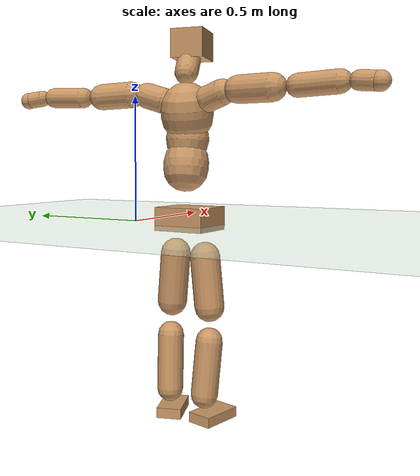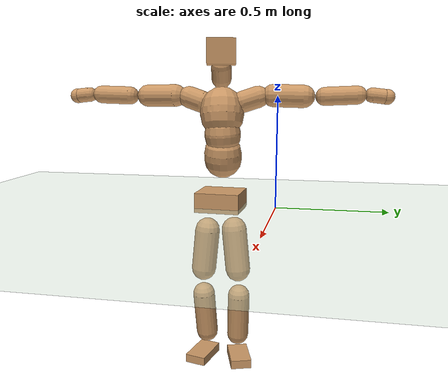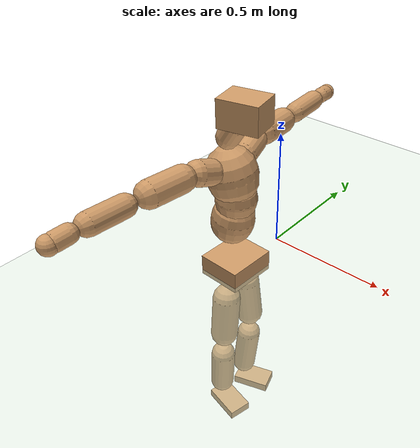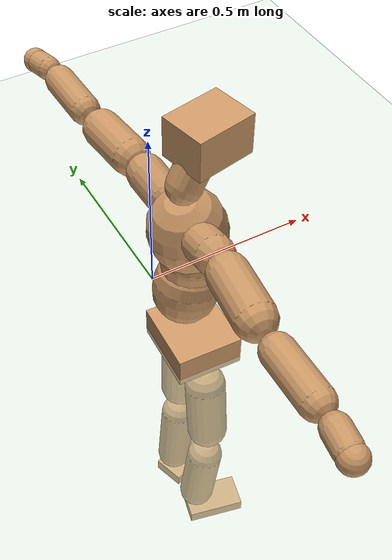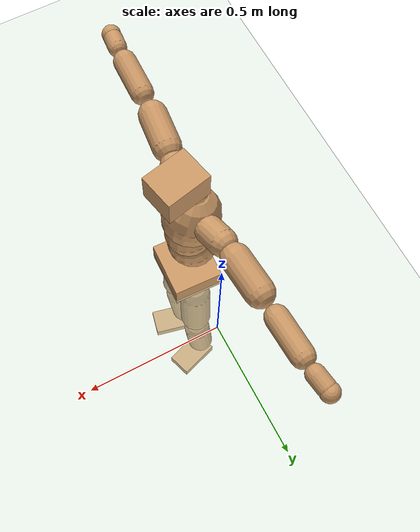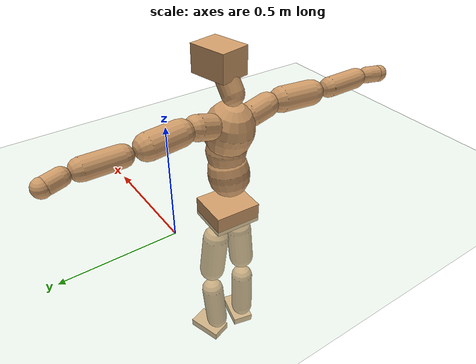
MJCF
<mujoco model="humanoid">
  <compiler coordinate="local" angle="radian"/>
  <default>
    <joint damping="0.0" armature="0.01" stiffness="0.0" limited="true"/>
    <geom conaffinity="1" condim="3" contype="7" margin="0.001" rgba="0.8 0.6 .4 1"/>
  </default>
  <asset>
    <texture type="skybox" builtin="gradient" rgb1=".4 .5 .6" rgb2="0 0 0" width="100" height="100"/>
    <texture builtin="flat" height="1278" mark="cross" markrgb="1 1 1" name="texgeom" random="0.01" rgb1="0.8 0.6 0.4" rgb2="0.8 0.6 0.4" type="cube" width="127"/>
    <texture builtin="checker" height="100" name="texplane" rgb1="0 0 0" rgb2="0.8 0.8 0.8" type="2d" width="100"/>
    <material name="MatPlane" reflectance="0.5" shininess="1" specular="1" texrepeat="60 60" texture="texplane"/>
    <material name="geom" texture="texgeom" texuniform="true"/>
  </asset>
  <worldbody>
    <light cutoff="100" diffuse="1 1 1" dir="-0 0 -1.3" directional="true" exponent="1" pos="0 0 1.3" specular=".1 .1 .1"/>
    <geom conaffinity="1" condim="3" name="floor" pos="0 0 0" rgba="0.8 0.9 0.8 1" size="100 100 .2" type="plane" material="MatPlane"/>
    <body name="Pelvis" pos="-0.0024 -0.258 0.0304">
      <freejoint name="Pelvis"/>
      <geom type="box" contype="1" conaffinity="1" density="500" pos="-0.0098 0.0004 -0.0074" size="0.0908 0.1024 0.045" quat="0.9998 0.0000 0.0000 -0.0216" name="Pelvis"/>
      <body name="L_Hip" pos="-0.0115 0.0569 -0.0805">
        <joint name="L_Hip_x" type="hinge" pos="0 0 0" axis="1 0 0" stiffness="800" damping="80" armature="0.02" range="-180.0000 180.0000"/>
        <joint name="L_Hip_y" type="hinge" pos="0 0 0" axis="0 1 0" stiffness="800" damping="80" armature="0.02" range="-180.0000 180.0000"/>
        <joint name="L_Hip_z" type="hinge" pos="0 0 0" axis="0 0 1" stiffness="800" damping="80" armature="0.02" range="-180.0000 180.0000"/>
        <geom type="capsule" contype="1" conaffinity="1" density="500" fromto="0.0022 0.0065 -0.0650 0.0087 0.0260 -0.2599" size="0.0581" name="L_Hip"/>
        <body name="L_Knee" pos="0.0109 0.0325 -0.3248">
          <joint name="L_Knee_x" type="hinge" pos="0 0 0" axis="1 0 0" stiffness="800" damping="80" armature="0.02" range="-180.0000 180.0000"/>
          <joint name="L_Knee_y" type="hinge" pos="0 0 0" axis="0 1 0" stiffness="800" damping="80" armature="0.02" range="-180.0000 180.0000"/>
          <joint name="L_Knee_z" type="hinge" pos="0 0 0" axis="0 0 1" stiffness="800" damping="80" armature="0.02" range="-180.0000 180.0000"/>
          <geom type="capsule" contype="1" conaffinity="1" density="500" fromto="-0.0071 -0.0028 -0.0710 -0.0285 -0.0113 -0.2838" size="0.0517" name="L_Knee"/>
          <body name="L_Ankle" pos="-0.0356 -0.0141 -0.3548">
            <joint name="L_Ankle_x" type="hinge" pos="0 0 0" axis="1 0 0" stiffness="800" damping="80" armature="0.02" range="-180.0000 180.0000"/>
            <joint name="L_Ankle_y" type="hinge" pos="0 0 0" axis="0 1 0" stiffness="800" damping="80" armature="0.02" range="-180.0000 180.0000"/>
            <joint name="L_Ankle_z" type="hinge" pos="0 0 0" axis="0 0 1" stiffness="800" damping="80" armature="0.02" range="-180.0000 180.0000"/>
            <geom type="box" contype="1" conaffinity="1" density="500" pos="0.0562 0.0183 -0.0265" size="0.0819 0.0485 0.0206" quat="0.9877 0.0000 0.0000 0.1567" name="L_Ankle"/>
            <body name="L_Toe" pos="0.1123 0.0366 -0.0529">
              <joint name="L_Toe_x" type="hinge" pos="0 0 0" axis="1 0 0" stiffness="500" damping="50" armature="0.02" range="-180.0000 180.0000"/>
              <joint name="L_Toe_y" type="hinge" pos="0 0 0" axis="0 1 0" stiffness="500" damping="50" armature="0.02" range="-180.0000 180.0000"/>
              <joint name="L_Toe_z" type="hinge" pos="0 0 0" axis="0 0 1" stiffness="500" damping="50" armature="0.02" range="-180.0000 180.0000"/>
              <geom type="box" contype="1" conaffinity="1" density="500" pos="0.0000 0.0000 0.0259" size="0.001 0.0024 0.001" quat="0.9868 0.0000 0.0000 0.1619" name="L_Toe"/>
            </body>
          </body>
        </body>
      </body>
      <body name="R_Hip" pos="-0.0059 -0.0582 -0.0893">
        <joint name="R_Hip_x" type="hinge" pos="0 0 0" axis="1 0 0" stiffness="800" damping="80" armature="0.02" range="-180.0000 180.0000"/>
        <joint name="R_Hip_y" type="hinge" pos="0 0 0" axis="0 1 0" stiffness="800" damping="80" armature="0.02" range="-180.0000 180.0000"/>
        <joint name="R_Hip_z" type="hinge" pos="0 0 0" axis="0 0 1" stiffness="800" damping="80" armature="0.02" range="-180.0000 180.0000"/>
        <geom type="capsule" contype="1" conaffinity="1" density="500" fromto="-0.0001 -0.0066 -0.0643 -0.0003 -0.0265 -0.2572" size="0.0579" name="R_Hip"/>
        <body name="R_Knee" pos="-0.0003 -0.0331 -0.3215">
          <joint name="R_Knee_x" type="hinge" pos="0 0 0" axis="1 0 0" stiffness="800" damping="80" armature="0.02" range="-180.0000 180.0000"/>
          <joint name="R_Knee_y" type="hinge" pos="0 0 0" axis="0 1 0" stiffness="800" damping="80" armature="0.02" range="-180.0000 180.0000"/>
          <joint name="R_Knee_z" type="hinge" pos="0 0 0" axis="0 0 1" stiffness="800" damping="80" armature="0.02" range="-180.0000 180.0000"/>
          <geom type="capsule" contype="1" conaffinity="1" density="500" fromto="-0.0068 0.0033 -0.0694 -0.0271 0.0130 -0.2775" size="0.0524" name="R_Knee"/>
          <body name="R_Ankle" pos="-0.0339 0.0163 -0.3469">
            <joint name="R_Ankle_x" type="hinge" pos="0 0 0" axis="1 0 0" stiffness="800" damping="80" armature="0.02" range="-180.0000 180.0000"/>
            <joint name="R_Ankle_y" type="hinge" pos="0 0 0" axis="0 1 0" stiffness="800" damping="80" armature="0.02" range="-180.0000 180.0000"/>
            <joint name="R_Ankle_z" type="hinge" pos="0 0 0" axis="0 0 1" stiffness="800" damping="80" armature="0.02" range="-180.0000 180.0000"/>
            <geom type="box" contype="1" conaffinity="1" density="500" pos="0.0604 -0.0140 -0.0260" size="0.085 0.0498 0.02" quat="0.9935 0.0000 0.0000 -0.1139" name="R_Ankle"/>
            <body name="R_Toe" pos="0.1209 -0.0281 -0.052">
              <joint name="R_Toe_x" type="hinge" pos="0 0 0" axis="1 0 0" stiffness="500" damping="50" armature="0.02" range="-180.0000 180.0000"/>
              <joint name="R_Toe_y" type="hinge" pos="0 0 0" axis="0 1 0" stiffness="500" damping="50" armature="0.02" range="-180.0000 180.0000"/>
              <joint name="R_Toe_z" type="hinge" pos="0 0 0" axis="0 0 1" stiffness="500" damping="50" armature="0.02" range="-180.0000 180.0000"/>
              <geom type="box" contype="1" conaffinity="1" density="500" pos="0.0000 0.0000 0.0275" size="0.0011 0.0025 0.0011" quat="0.9945 0.0000 0.0000 -0.1044" name="R_Toe"/>
            </body>
          </body>
        </body>
      </body>
      <body name="Torso" pos="-0.0413 0.0039 0.1256">
        <joint name="Torso_x" type="hinge" pos="0 0 0" axis="1 0 0" stiffness="1000" damping="100" armature="0.02" range="-180.0000 180.0000"/>
        <joint name="Torso_y" type="hinge" pos="0 0 0" axis="0 1 0" stiffness="1000" damping="100" armature="0.02" range="-180.0000 180.0000"/>
        <joint name="Torso_z" type="hinge" pos="0 0 0" axis="0 0 1" stiffness="1000" damping="100" armature="0.02" range="-180.0000 180.0000"/>
        <geom type="capsule" contype="1" conaffinity="1" density="500" fromto="0.0163 0.0038 0.0856 0.0109 0.0026 0.0570" size="0.0864" name="Torso"/>
        <body name="Spine" pos="0.0272 0.0064 0.1426">
          <joint name="Spine_x" type="hinge" pos="0 0 0" axis="1 0 0" stiffness="1000" damping="100" armature="0.02" range="-180.0000 180.0000"/>
          <joint name="Spine_y" type="hinge" pos="0 0 0" axis="0 1 0" stiffness="1000" damping="100" armature="0.02" range="-180.0000 180.0000"/>
          <joint name="Spine_z" type="hinge" pos="0 0 0" axis="0 0 1" stiffness="1000" damping="100" armature="0.02" range="-180.0000 180.0000"/>
          <geom type="capsule" contype="1" conaffinity="1" density="500" fromto="0.0024 -0.0012 0.0346 0.0016 -0.0008 0.0231" size="0.0826" name="Spine"/>
          <body name="Chest" pos="0.0041 -0.002 0.0577">
            <joint name="Chest_x" type="hinge" pos="0 0 0" axis="1 0 0" stiffness="1000" damping="100" armature="0.02" range="-180.0000 180.0000"/>
            <joint name="Chest_y" type="hinge" pos="0 0 0" axis="0 1 0" stiffness="1000" damping="100" armature="0.02" range="-180.0000 180.0000"/>
            <joint name="Chest_z" type="hinge" pos="0 0 0" axis="0 0 1" stiffness="1000" damping="100" armature="0.02" range="-180.0000 180.0000"/>
            <geom type="capsule" contype="1" conaffinity="1" density="500" fromto="-0.0192 -0.0046 0.0832 -0.0128 -0.0031 0.0554" size="0.0994" name="Chest"/>
            <body name="Neck" pos="-0.0401 -0.0109 0.2006">
              <joint name="Neck_x" type="hinge" pos="0 0 0" axis="1 0 0" stiffness="500" damping="50" armature="0.02" range="-180.0000 180.0000"/>
              <joint name="Neck_y" type="hinge" pos="0 0 0" axis="0 1 0" stiffness="500" damping="50" armature="0.02" range="-180.0000 180.0000"/>
              <joint name="Neck_z" type="hinge" pos="0 0 0" axis="0 0 1" stiffness="500" damping="50" armature="0.02" range="-180.0000 180.0000"/>
              <geom type="capsule" contype="1" conaffinity="1" density="500" fromto="0.0102 0.0019 0.0166 0.0410 0.0077 0.0664" size="0.0447" name="Neck"/>
              <body name="Head" pos="0.0512 0.0096 0.083">
                <joint name="Head_x" type="hinge" pos="0 0 0" axis="1 0 0" stiffness="500" damping="50" armature="0.02" range="-180.0000 180.0000"/>
                <joint name="Head_y" type="hinge" pos="0 0 0" axis="0 1 0" stiffness="500" damping="50" armature="0.02" range="-180.0000 180.0000"/>
                <joint name="Head_z" type="hinge" pos="0 0 0" axis="0 0 1" stiffness="500" damping="50" armature="0.02" range="-180.0000 180.0000"/>
                <geom type="box" contype="1" conaffinity="1" density="500" pos="0.0266 0.0058 0.0425" size="0.0796 0.0624 0.0534" quat="0.9942 0.0000 0.0000 0.1073" name="Head"/>
              </body>
            </body>
            <body name="L_Thorax" pos="-0.0267 0.0643 0.1082">
              <joint name="L_Thorax_x" type="hinge" pos="0 0 0" axis="1 0 0" stiffness="500" damping="50" armature="0.02" range="-180.0000 180.0000"/>
              <joint name="L_Thorax_y" type="hinge" pos="0 0 0" axis="0 1 0" stiffness="500" damping="50" armature="0.02" range="-180.0000 180.0000"/>
              <joint name="L_Thorax_z" type="hinge" pos="0 0 0" axis="0 0 1" stiffness="500" damping="50" armature="0.02" range="-180.0000 180.0000"/>
              <geom type="capsule" contype="1" conaffinity="1" density="500" fromto="-0.0039 0.0229 0.0073 -0.0157 0.0917 0.0293" size="0.0489" name="L_Thorax"/>
              <body name="L_Shoulder" pos="-0.0196 0.1146 0.0366">
                <joint name="L_Shoulder_x" type="hinge" pos="0 0 0" axis="1 0 0" stiffness="500" damping="50" armature="0.02" range="-720.0000 720.0000"/>
                <joint name="L_Shoulder_y" type="hinge" pos="0 0 0" axis="0 1 0" stiffness="500" damping="50" armature="0.02" range="-720.0000 720.0000"/>
                <joint name="L_Shoulder_z" type="hinge" pos="0 0 0" axis="0 0 1" stiffness="500" damping="50" armature="0.02" range="-720.0000 720.0000"/>
                <geom type="capsule" contype="1" conaffinity="1" density="500" fromto="-0.0037 0.0446 -0.0013 -0.0147 0.1783 -0.0051" size="0.0505" name="L_Shoulder"/>
                <body name="L_Elbow" pos="-0.0184 0.2229 -0.0064">
                  <joint name="L_Elbow_x" type="hinge" pos="0 0 0" axis="1 0 0" stiffness="500" damping="50" armature="0.02" range="-720.0000 720.0000"/>
                  <joint name="L_Elbow_y" type="hinge" pos="0 0 0" axis="0 1 0" stiffness="500" damping="50" armature="0.02" range="-720.0000 720.0000"/>
                  <joint name="L_Elbow_z" type="hinge" pos="0 0 0" axis="0 0 1" stiffness="500" damping="50" armature="0.02" range="-720.0000 720.0000"/>
                  <geom type="capsule" contype="1" conaffinity="1" density="500" fromto="-0.0019 0.0471 0.0019 -0.0075 0.1885 0.0076" size="0.0404" name="L_Elbow"/>
                  <body name="L_Wrist" pos="-0.0094 0.2356 0.0095">
                    <joint name="L_Wrist_x" type="hinge" pos="0 0 0" axis="1 0 0" stiffness="300" damping="30" armature="0.02" range="-180.0000 180.0000"/>
                    <joint name="L_Wrist_y" type="hinge" pos="0 0 0" axis="0 1 0" stiffness="300" damping="30" armature="0.02" range="-180.0000 180.0000"/>
                    <joint name="L_Wrist_z" type="hinge" pos="0 0 0" axis="0 0 1" stiffness="300" damping="30" armature="0.02" range="-180.0000 180.0000"/>
                    <geom type="capsule" contype="1" conaffinity="1" density="500" fromto="-0.0028 0.0162 -0.0020 -0.0114 0.0647 -0.0078" size="0.0325" name="L_Wrist"/>
                    <body name="L_Hand" pos="-0.0142 0.0809 -0.0098">
                      <joint name="L_Hand_x" type="hinge" pos="0 0 0" axis="1 0 0" stiffness="300" damping="30" armature="0.02" range="-180.0000 180.0000"/>
                      <joint name="L_Hand_y" type="hinge" pos="0 0 0" axis="0 1 0" stiffness="300" damping="30" armature="0.02" range="-180.0000 180.0000"/>
                      <joint name="L_Hand_z" type="hinge" pos="0 0 0" axis="0 0 1" stiffness="300" damping="30" armature="0.02" range="-180.0000 180.0000"/>
                      <geom type="sphere" contype="1" conaffinity="1" density="500" size="0.0334" pos="0.0000 0.0000 0.0000" name="L_Hand"/>
                    </body>
                  </body>
                </body>
              </body>
            </body>
            <body name="R_Thorax" pos="-0.0293 -0.0766 0.107">
              <joint name="R_Thorax_x" type="hinge" pos="0 0 0" axis="1 0 0" stiffness="500" damping="50" armature="0.02" range="-180.0000 180.0000"/>
              <joint name="R_Thorax_y" type="hinge" pos="0 0 0" axis="0 1 0" stiffness="500" damping="50" armature="0.02" range="-180.0000 180.0000"/>
              <joint name="R_Thorax_z" type="hinge" pos="0 0 0" axis="0 0 1" stiffness="500" damping="50" armature="0.02" range="-180.0000 180.0000"/>
              <geom type="capsule" contype="1" conaffinity="1" density="500" fromto="-0.0019 -0.0212 0.0071 -0.0075 -0.0850 0.0285" size="0.0492" name="R_Thorax"/>
              <body name="R_Shoulder" pos="-0.0094 -0.1062 0.0357">
                <joint name="R_Shoulder_x" type="hinge" pos="0 0 0" axis="1 0 0" stiffness="500" damping="50" armature="0.02" range="-720.0000 720.0000"/>
                <joint name="R_Shoulder_y" type="hinge" pos="0 0 0" axis="0 1 0" stiffness="500" damping="50" armature="0.02" range="-720.0000 720.0000"/>
                <joint name="R_Shoulder_z" type="hinge" pos="0 0 0" axis="0 0 1" stiffness="500" damping="50" armature="0.02" range="-720.0000 720.0000"/>
                <geom type="capsule" contype="1" conaffinity="1" density="500" fromto="-0.0052 -0.0458 -0.0005 -0.0210 -0.1832 -0.0019" size="0.051" name="R_Shoulder"/>
                <body name="R_Elbow" pos="-0.0262 -0.229 -0.0024">
                  <joint name="R_Elbow_x" type="hinge" pos="0 0 0" axis="1 0 0" stiffness="500" damping="50" armature="0.02" range="-720.0000 720.0000"/>
                  <joint name="R_Elbow_y" type="hinge" pos="0 0 0" axis="0 1 0" stiffness="500" damping="50" armature="0.02" range="-720.0000 720.0000"/>
                  <joint name="R_Elbow_z" type="hinge" pos="0 0 0" axis="0 0 1" stiffness="500" damping="50" armature="0.02" range="-720.0000 720.0000"/>
                  <geom type="capsule" contype="1" conaffinity="1" density="500" fromto="-0.0014 -0.0480 0.0014 -0.0054 -0.1919 0.0057" size="0.0412" name="R_Elbow"/>
                  <body name="R_Wrist" pos="-0.0068 -0.2398 0.0071">
                    <joint name="R_Wrist_x" type="hinge" pos="0 0 0" axis="1 0 0" stiffness="300" damping="30" armature="0.02" range="-180.0000 180.0000"/>
                    <joint name="R_Wrist_y" type="hinge" pos="0 0 0" axis="0 1 0" stiffness="300" damping="30" armature="0.02" range="-180.0000 180.0000"/>
                    <joint name="R_Wrist_z" type="hinge" pos="0 0 0" axis="0 0 1" stiffness="300" damping="30" armature="0.02" range="-180.0000 180.0000"/>
                    <geom type="capsule" contype="1" conaffinity="1" density="500" fromto="-0.0019 -0.0169 -0.0016 -0.0074 -0.0675 -0.0066" size="0.0337" name="R_Wrist"/>
                    <body name="R_Hand" pos="-0.0093 -0.0843 -0.0082">
                      <joint name="R_Hand_x" type="hinge" pos="0 0 0" axis="1 0 0" stiffness="300" damping="30" armature="0.02" range="-180.0000 180.0000"/>
                      <joint name="R_Hand_y" type="hinge" pos="0 0 0" axis="0 1 0" stiffness="300" damping="30" armature="0.02" range="-180.0000 180.0000"/>
                      <joint name="R_Hand_z" type="hinge" pos="0 0 0" axis="0 0 1" stiffness="300" damping="30" armature="0.02" range="-180.0000 180.0000"/>
                      <geom type="sphere" contype="1" conaffinity="1" density="500" size="0.0345" pos="0.0000 0.0000 0.0000" name="R_Hand"/>
                    </body>
                  </body>
                </body>
              </body>
            </body>
          </body>
        </body>
      </body>
    </body>
  </worldbody>
  <actuator>
    <motor name="L_Hip_x" joint="L_Hip_x" gear="500"/>
    <motor name="L_Hip_y" joint="L_Hip_y" gear="500"/>
    <motor name="L_Hip_z" joint="L_Hip_z" gear="500"/>
    <motor name="L_Knee_x" joint="L_Knee_x" gear="500"/>
    <motor name="L_Knee_y" joint="L_Knee_y" gear="500"/>
    <motor name="L_Knee_z" joint="L_Knee_z" gear="500"/>
    <motor name="L_Ankle_x" joint="L_Ankle_x" gear="500"/>
    <motor name="L_Ankle_y" joint="L_Ankle_y" gear="500"/>
    <motor name="L_Ankle_z" joint="L_Ankle_z" gear="500"/>
    <motor name="L_Toe_x" joint="L_Toe_x" gear="500"/>
    <motor name="L_Toe_y" joint="L_Toe_y" gear="500"/>
    <motor name="L_Toe_z" joint="L_Toe_z" gear="500"/>
    <motor name="R_Hip_x" joint="R_Hip_x" gear="500"/>
    <motor name="R_Hip_y" joint="R_Hip_y" gear="500"/>
    <motor name="R_Hip_z" joint="R_Hip_z" gear="500"/>
    <motor name="R_Knee_x" joint="R_Knee_x" gear="500"/>
    <motor name="R_Knee_y" joint="R_Knee_y" gear="500"/>
    <motor name="R_Knee_z" joint="R_Knee_z" gear="500"/>
    <motor name="R_Ankle_x" joint="R_Ankle_x" gear="500"/>
    <motor name="R_Ankle_y" joint="R_Ankle_y" gear="500"/>
    <motor name="R_Ankle_z" joint="R_Ankle_z" gear="500"/>
    <motor name="R_Toe_x" joint="R_Toe_x" gear="500"/>
    <motor name="R_Toe_y" joint="R_Toe_y" gear="500"/>
    <motor name="R_Toe_z" joint="R_Toe_z" gear="500"/>
    <motor name="Torso_x" joint="Torso_x" gear="500"/>
    <motor name="Torso_y" joint="Torso_y" gear="500"/>
    <motor name="Torso_z" joint="Torso_z" gear="500"/>
    <motor name="Spine_x" joint="Spine_x" gear="500"/>
    <motor name="Spine_y" joint="Spine_y" gear="500"/>
    <motor name="Spine_z" joint="Spine_z" gear="500"/>
    <motor name="Chest_x" joint="Chest_x" gear="500"/>
    <motor name="Chest_y" joint="Chest_y" gear="500"/>
    <motor name="Chest_z" joint="Chest_z" gear="500"/>
    <motor name="Neck_x" joint="Neck_x" gear="500"/>
    <motor name="Neck_y" joint="Neck_y" gear="500"/>
    <motor name="Neck_z" joint="Neck_z" gear="500"/>
    <motor name="Head_x" joint="Head_x" gear="500"/>
    <motor name="Head_y" joint="Head_y" gear="500"/>
    <motor name="Head_z" joint="Head_z" gear="500"/>
    <motor name="L_Thorax_x" joint="L_Thorax_x" gear="500"/>
    <motor name="L_Thorax_y" joint="L_Thorax_y" gear="500"/>
    <motor name="L_Thorax_z" joint="L_Thorax_z" gear="500"/>
    <motor name="L_Shoulder_x" joint="L_Shoulder_x" gear="500"/>
    <motor name="L_Shoulder_y" joint="L_Shoulder_y" gear="500"/>
    <motor name="L_Shoulder_z" joint="L_Shoulder_z" gear="500"/>
    <motor name="L_Elbow_x" joint="L_Elbow_x" gear="500"/>
    <motor name="L_Elbow_y" joint="L_Elbow_y" gear="500"/>
    <motor name="L_Elbow_z" joint="L_Elbow_z" gear="500"/>
    <motor name="L_Wrist_x" joint="L_Wrist_x" gear="500"/>
    <motor name="L_Wrist_y" joint="L_Wrist_y" gear="500"/>
    <motor name="L_Wrist_z" joint="L_Wrist_z" gear="500"/>
    <motor name="L_Hand_x" joint="L_Hand_x" gear="500"/>
    <motor name="L_Hand_y" joint="L_Hand_y" gear="500"/>
    <motor name="L_Hand_z" joint="L_Hand_z" gear="500"/>
    <motor name="R_Thorax_x" joint="R_Thorax_x" gear="500"/>
    <motor name="R_Thorax_y" joint="R_Thorax_y" gear="500"/>
    <motor name="R_Thorax_z" joint="R_Thorax_z" gear="500"/>
    <motor name="R_Shoulder_x" joint="R_Shoulder_x" gear="500"/>
    <motor name="R_Shoulder_y" joint="R_Shoulder_y" gear="500"/>
    <motor name="R_Shoulder_z" joint="R_Shoulder_z" gear="500"/>
    <motor name="R_Elbow_x" joint="R_Elbow_x" gear="500"/>
    <motor name="R_Elbow_y" joint="R_Elbow_y" gear="500"/>
    <motor name="R_Elbow_z" joint="R_Elbow_z" gear="500"/>
    <motor name="R_Wrist_x" joint="R_Wrist_x" gear="500"/>
    <motor name="R_Wrist_y" joint="R_Wrist_y" gear="500"/>
    <motor name="R_Wrist_z" joint="R_Wrist_z" gear="500"/>
    <motor name="R_Hand_x" joint="R_Hand_x" gear="500"/>
    <motor name="R_Hand_y" joint="R_Hand_y" gear="500"/>
    <motor name="R_Hand_z" joint="R_Hand_z" gear="500"/>
  </actuator>
  <contact>
    <exclude body1="Torso" body2="Chest"/>
    <exclude body1="Head" body2="Chest"/>
    <exclude body1="R_Knee" body2="R_Toe"/>
    <exclude body1="R_Knee" body2="L_Ankle"/>
    <exclude body1="R_Knee" body2="L_Toe"/>
    <exclude body1="L_Knee" body2="L_Toe"/>
    <exclude body1="L_Knee" body2="R_Ankle"/>
    <exclude body1="L_Knee" body2="R_Toe"/>
    <exclude body1="L_Shoulder" body2="Chest"/>
    <exclude body1="R_Shoulder" body2="Chest"/>
  </contact>
  <sensor/>
  <size njmax="700" nconmax="700"/>
</mujoco>
